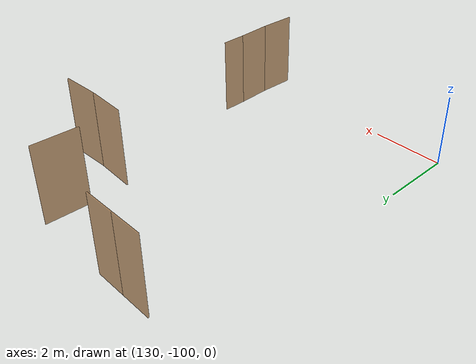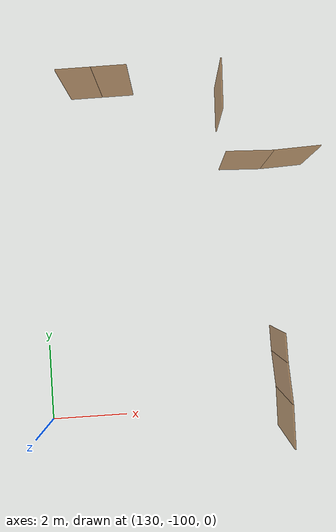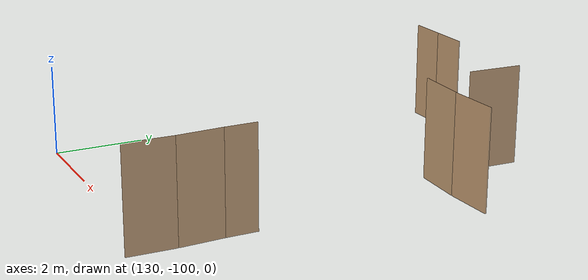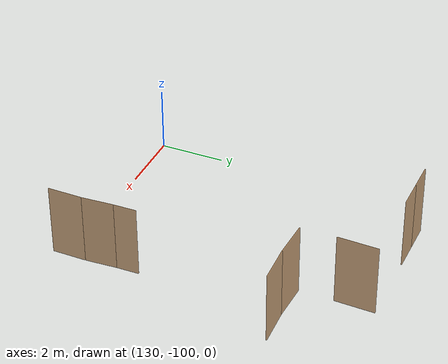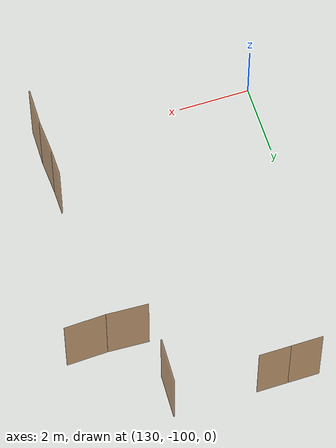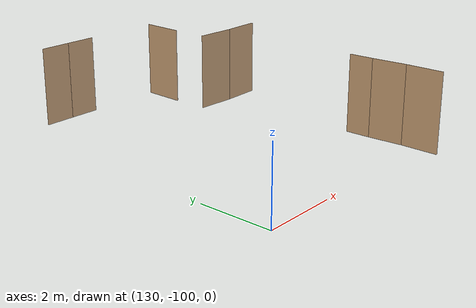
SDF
<sdf version="1.7">
 <world name="sim_world">
  <model name="puerta109">
   <pose>136.6909992048098 -93.4653461180836 0.0 0 0 0.03965179639595527</pose>
   <link name="right">
    <pose>0 0 1.11 0 0 0</pose>
    <visual name="right_visual">
     <geometry><box><size>1.1320165627569505 0.03 2.2</size></box></geometry>
     <material>
      <ambient>0.5 0.25 0 0.6</ambient>
      <diffuse>0.5 0.25 0 0.6</diffuse>
      <pbr><metal><metalness>0.0</metalness></metal></pbr>
     </material>
    </visual>
    <collision name="right_collision">
     <geometry><box><size>1.1320165627569505 0.03 2.2</size></box></geometry>
     <surface><contact><collide_bitmask>0x02</collide_bitmask></contact></surface>
    </collision>
    <inertial>
     <mass>50.0</mass>
     <inertia><ixx>20.17041666666667</ixx><iyy>25.50608957648359</iyy><izz>5.3431729098169205</izz></inertia>
    </inertial>
   </link>
   <joint name="right_joint" type="revolute">
    <parent>world</parent>
    <child>right</child>
    <axis><xyz>0 0 -1</xyz><limit><lower>0</lower><upper>1.57</upper></limit></axis>
    <pose>0.5710082813784753 0 0 0 0 0</pose>
   </joint>
   <plugin name="register_component" filename="libregister_component.so">
    <component name="Door">
     <v_max_door>0.5</v_max_door>
     <a_max_door>0.3</a_max_door>
     <a_nom_door>0.15</a_nom_door>
     <dx_min_door>0.01</dx_min_door>
     <f_max_door>500.0</f_max_door>
     <ros_interface>true</ros_interface>
     <door name="puerta109" type="SwingDoor" left_joint_name="empty_joint" right_joint_name="right_joint"/>
    </component>
   </plugin>
  </model>
  <model name="puerta110">
   <pose>135.54605160742005 -93.46479916189479 0.0 0 0 3.1012541606016946</pose>
   <link name="right">
    <pose>0 0 1.11 0 0 0</pose>
    <visual name="right_visual">
     <geometry><box><size>1.139711565768563 0.03 2.2</size></box></geometry>
     <material>
      <ambient>0.5 0.25 0 0.6</ambient>
      <diffuse>0.5 0.25 0 0.6</diffuse>
      <pbr><metal><metalness>0.0</metalness></metal></pbr>
     </material>
    </visual>
    <collision name="right_collision">
     <geometry><box><size>1.139711565768563 0.03 2.2</size></box></geometry>
     <surface><contact><collide_bitmask>0x02</collide_bitmask></contact></surface>
    </collision>
    <inertial>
     <mass>50.0</mass>
     <inertia><ixx>20.17041666666667</ixx><iyy>25.578926888110963</iyy><izz>5.41601022144429</izz></inertia>
    </inertial>
   </link>
   <joint name="right_joint" type="revolute">
    <parent>world</parent>
    <child>right</child>
    <axis><xyz>0 0 1</xyz><limit><lower>0</lower><upper>1.57</upper></limit></axis>
    <pose>0.5748557828842815 0 0 0 0 0</pose>
   </joint>
   <plugin name="register_component" filename="libregister_component.so">
    <component name="Door">
     <v_max_door>0.5</v_max_door>
     <a_max_door>0.3</a_max_door>
     <a_nom_door>0.15</a_nom_door>
     <dx_min_door>0.01</dx_min_door>
     <f_max_door>500.0</f_max_door>
     <ros_interface>true</ros_interface>
     <door name="puerta110" type="SwingDoor" left_joint_name="empty_joint" right_joint_name="right_joint"/>
    </component>
   </plugin>
  </model>
  <model name="puerta111">
   <pose>134.9949511736417 -91.76422822378078 0.0 0 0 1.5330867218950344</pose>
   <link name="right">
    <pose>0 0 1.11 0 0 0</pose>
    <visual name="right_visual">
     <geometry><box><size>1.225400466177177 0.03 2.2</size></box></geometry>
     <material>
      <ambient>0.5 0.25 0 0.6</ambient>
      <diffuse>0.5 0.25 0 0.6</diffuse>
      <pbr><metal><metalness>0.0</metalness></metal></pbr>
     </material>
    </visual>
    <collision name="right_collision">
     <geometry><box><size>1.225400466177177 0.03 2.2</size></box></geometry>
     <surface><contact><collide_bitmask>0x02</collide_bitmask></contact></surface>
    </collision>
    <inertial>
     <mass>50.0</mass>
     <inertia><ixx>20.17041666666667</ixx><iyy>26.42335959378018</iyy><izz>6.260442927113511</izz></inertia>
    </inertial>
   </link>
   <joint name="right_joint" type="revolute">
    <parent>world</parent>
    <child>right</child>
    <axis><xyz>0 0 1</xyz><limit><lower>0</lower><upper>1.57</upper></limit></axis>
    <pose>0.6177002330885885 0 0 0 0 0</pose>
   </joint>
   <plugin name="register_component" filename="libregister_component.so">
    <component name="Door">
     <v_max_door>0.5</v_max_door>
     <a_max_door>0.3</a_max_door>
     <a_nom_door>0.15</a_nom_door>
     <dx_min_door>0.01</dx_min_door>
     <f_max_door>500.0</f_max_door>
     <ros_interface>true</ros_interface>
     <door name="puerta111" type="SwingDoor" left_joint_name="empty_joint" right_joint_name="right_joint"/>
    </component>
   </plugin>
  </model>
  <model name="puerta112">
   <pose>131.86192301381269 -91.18165677236942 0.0 0 0 0.006785040997605178</pose>
   <link name="right">
    <pose>0.4356185580332882 0 1.11 0 0 0</pose>
    <visual name="right_visual">
     <geometry><box><size>0.8612371160665764 0.03 2.2</size></box></geometry>
     <material>
      <ambient>0.5 0.25 0 0.6</ambient>
      <diffuse>0.5 0.25 0 0.6</diffuse>
      <pbr><metal><metalness>0.0</metalness></metal></pbr>
     </material>
    </visual>
    <collision name="right_collision">
     <geometry><box><size>0.8612371160665764 0.03 2.2</size></box></geometry>
     <surface><contact><collide_bitmask>0x02</collide_bitmask></contact></surface>
    </collision>
    <inertial>
     <mass>50.0</mass>
     <inertia><ixx>20.17041666666667</ixx><iyy>23.257205708711144</iyy><izz>3.094289042044473</izz></inertia>
    </inertial>
   </link>
   <joint name="right_joint" type="revolute">
    <parent>world</parent>
    <child>right</child>
    <axis><xyz>0 0 -1</xyz><limit><lower>0</lower><upper>1.57</upper></limit></axis>
    <pose>0.4356185580332882 0 0 0 0 0</pose>
   </joint>
   <link name="left">
    <pose>-0.4356185580332882 0 1.11 0 0 0</pose>
    <visual name="left_visual">
     <geometry><box><size>0.8612371160665764 0.03 2.2</size></box></geometry>
     <material>
      <ambient>0.5 0.25 0 0.6</ambient>
      <diffuse>0.5 0.25 0 0.6</diffuse>
      <pbr><metal><metalness>0.0</metalness></metal></pbr>
     </material>
    </visual>
    <collision name="left_collision">
     <geometry><box><size>0.8612371160665764 0.03 2.2</size></box></geometry>
     <surface><contact><collide_bitmask>0x02</collide_bitmask></contact></surface>
    </collision>
    <inertial>
     <mass>50.0</mass>
     <inertia><ixx>20.17041666666667</ixx><iyy>23.257205708711144</iyy><izz>3.094289042044473</izz></inertia>
    </inertial>
   </link>
   <joint name="left_joint" type="revolute">
    <parent>world</parent>
    <child>left</child>
    <axis><xyz>0 0 -1</xyz><limit><lower>-1.57</lower><upper>0</upper></limit></axis>
    <pose>-0.4356185580332882 0 0 0 0 0</pose>
   </joint>
   <plugin name="register_component" filename="libregister_component.so">
    <component name="Door">
     <v_max_door>0.5</v_max_door>
     <a_max_door>0.3</a_max_door>
     <a_nom_door>0.15</a_nom_door>
     <dx_min_door>0.01</dx_min_door>
     <f_max_door>500.0</f_max_door>
     <ros_interface>true</ros_interface>
     <door name="puerta112" type="DoubleSwingDoor" left_joint_name="left_joint" right_joint_name="right_joint"/>
    </component>
   </plugin>
  </model>
  <model name="puerta161">
   <pose>136.1189040680918 -100.0409165302782 0.0 0 0 -1.5909676570602367</pose>
   <link name="right">
    <pose>0 0 1.11 0 0 0</pose>
    <visual name="right_visual">
     <geometry><box><size>1.0392333467231558 0.03 2.2</size></box></geometry>
     <material>
      <ambient>0.5 0.25 0 0.6</ambient>
      <diffuse>0.5 0.25 0 0.6</diffuse>
      <pbr><metal><metalness>0.0</metalness></metal></pbr>
     </material>
    </visual>
    <collision name="right_collision">
     <geometry><box><size>1.0392333467231558 0.03 2.2</size></box></geometry>
     <surface><contact><collide_bitmask>0x02</collide_bitmask></contact></surface>
    </collision>
    <inertial>
     <mass>50.0</mass>
     <inertia><ixx>20.17041666666667</ixx><iyy>24.66669145392255</iyy><izz>4.503774787255878</izz></inertia>
    </inertial>
   </link>
   <joint name="right_joint" type="revolute">
    <parent>world</parent>
    <child>right</child>
    <axis><xyz>0 0 1</xyz><limit><lower>0</lower><upper>1.57</upper></limit></axis>
    <pose>0.5246166733615779 0 0 0 0 0</pose>
   </joint>
   <plugin name="register_component" filename="libregister_component.so">
    <component name="Door">
     <v_max_door>0.5</v_max_door>
     <a_max_door>0.3</a_max_door>
     <a_nom_door>0.15</a_nom_door>
     <dx_min_door>0.01</dx_min_door>
     <f_max_door>500.0</f_max_door>
     <ros_interface>true</ros_interface>
     <door name="puerta161" type="SwingDoor" left_joint_name="empty_joint" right_joint_name="right_joint"/>
    </component>
   </plugin>
  </model>
  <model name="puerta162">
   <pose>136.10302130183982 -99.02761708017954 0.0 0 0 -1.5167066809419885</pose>
   <link name="right">
    <pose>0 0 1.11 0 0 0</pose>
    <visual name="right_visual">
     <geometry><box><size>0.9690107954249821 0.03 2.2</size></box></geometry>
     <material>
      <ambient>0.5 0.25 0 0.6</ambient>
      <diffuse>0.5 0.25 0 0.6</diffuse>
      <pbr><metal><metalness>0.0</metalness></metal></pbr>
     </material>
    </visual>
    <collision name="right_collision">
     <geometry><box><size>0.9690107954249821 0.03 2.2</size></box></geometry>
     <surface><contact><collide_bitmask>0x02</collide_bitmask></contact></surface>
    </collision>
    <inertial>
     <mass>50.0</mass>
     <inertia><ixx>20.17041666666667</ixx><iyy>24.07909134020899</iyy><izz>3.9161746735423195</izz></inertia>
    </inertial>
   </link>
   <joint name="right_joint" type="revolute">
    <parent>world</parent>
    <child>right</child>
    <axis><xyz>0 0 1</xyz><limit><lower>0</lower><upper>1.57</upper></limit></axis>
    <pose>0.4895053977124911 0 0 0 0 0</pose>
   </joint>
   <plugin name="register_component" filename="libregister_component.so">
    <component name="Door">
     <v_max_door>0.5</v_max_door>
     <a_max_door>0.3</a_max_door>
     <a_nom_door>0.15</a_nom_door>
     <dx_min_door>0.01</dx_min_door>
     <f_max_door>500.0</f_max_door>
     <ros_interface>true</ros_interface>
     <door name="puerta162" type="SwingDoor" left_joint_name="empty_joint" right_joint_name="right_joint"/>
    </component>
   </plugin>
  </model>
  <model name="puerta163">
   <pose>136.07390640317396 -98.19165765591404 0.0 0 0 -1.5631614996855772</pose>
   <link name="right">
    <pose>0 0 1.11 0 0 0</pose>
    <visual name="right_visual">
     <geometry><box><size>0.6843600821462696 0.03 2.2</size></box></geometry>
     <material>
      <ambient>0.5 0.25 0 0.6</ambient>
      <diffuse>0.5 0.25 0 0.6</diffuse>
      <pbr><metal><metalness>0.0</metalness></metal></pbr>
     </material>
    </visual>
    <collision name="right_collision">
     <geometry><box><size>0.6843600821462696 0.03 2.2</size></box></geometry>
     <surface><contact><collide_bitmask>0x02</collide_bitmask></contact></surface>
    </collision>
    <inertial>
     <mass>50.0</mass>
     <inertia><ixx>20.17041666666667</ixx><iyy>22.118119675146875</iyy><izz>1.955203008480204</izz></inertia>
    </inertial>
   </link>
   <joint name="right_joint" type="revolute">
    <parent>world</parent>
    <child>right</child>
    <axis><xyz>0 0 1</xyz><limit><lower>0</lower><upper>1.57</upper></limit></axis>
    <pose>0.3471800410731348 0 0 0 0 0</pose>
   </joint>
   <plugin name="register_component" filename="libregister_component.so">
    <component name="Door">
     <v_max_door>0.5</v_max_door>
     <a_max_door>0.3</a_max_door>
     <a_nom_door>0.15</a_nom_door>
     <dx_min_door>0.01</dx_min_door>
     <f_max_door>500.0</f_max_door>
     <ros_interface>true</ros_interface>
     <door name="puerta163" type="SwingDoor" left_joint_name="empty_joint" right_joint_name="right_joint"/>
    </component>
   </plugin>
  </model>
 </world>
</sdf>
